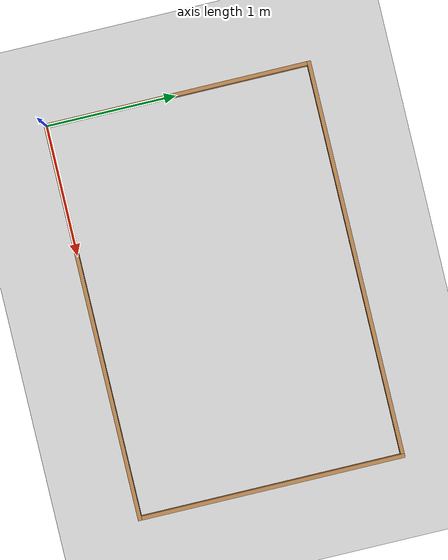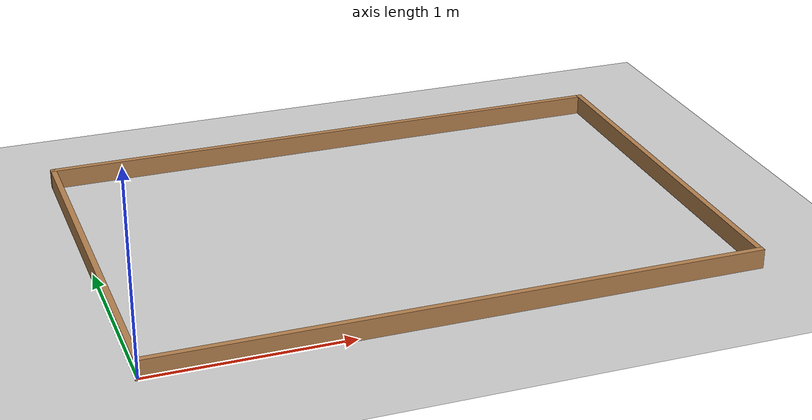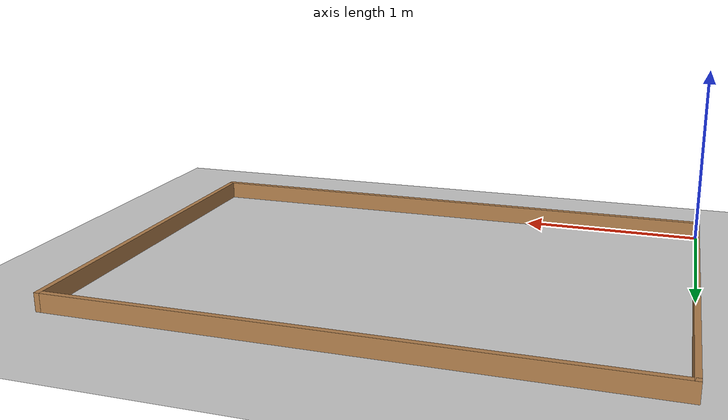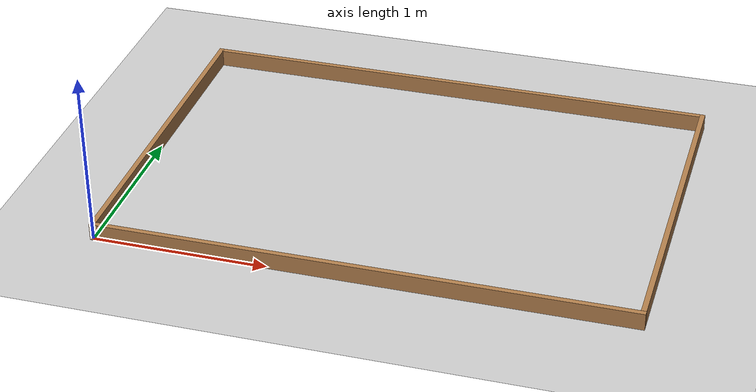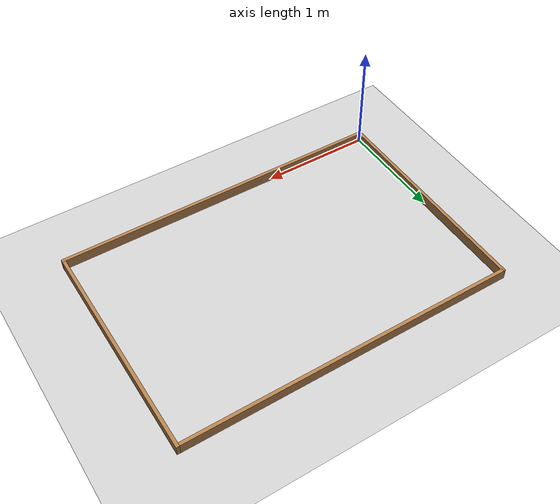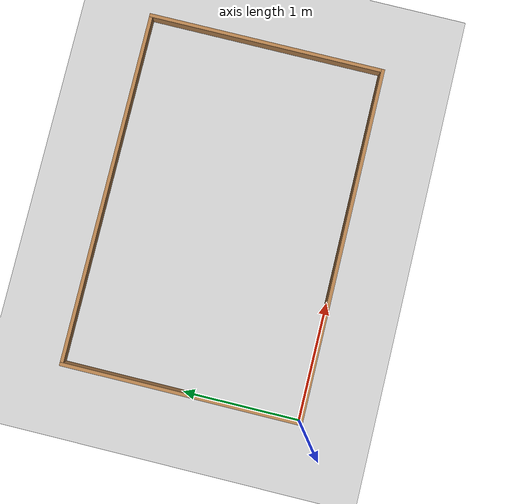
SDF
<sdf version="1.7">
 <world name="default">
  <light name="sun" type="directional">
   <pose>0 0 10 0 -0 0</pose>
   <diffuse>0.8 0.8 0.8 1</diffuse>
   <specular>0.2 0.2 0.2 1</specular>
   <attenuation>
    <range>1000</range>
    <constant>0.9</constant>
    <linear>0.01</linear>
    <quadratic>0.001</quadratic>
   </attenuation>
   <direction>-0.5 0.1 -0.9</direction>
   <spot><inner_angle>0</inner_angle><outer_angle>0</outer_angle><falloff>0</falloff></spot>
  </light>
  <model name="ground_plane">
   <static>1</static>
   <link name="link">
    <collision name="collision">
     <geometry><plane><normal>0 0 1</normal><size>100 100</size></plane></geometry>
     <surface>
      <contact><collide_bitmask>65535</collide_bitmask></contact>
      <friction><ode><mu>100</mu><mu2>50</mu2></ode></friction>
     </surface>
    </collision>
    <visual name="visual">
     <cast_shadows>0</cast_shadows>
     <geometry><plane><normal>0 0 1</normal><size>100 100</size></plane></geometry>
     <material>
      <script><uri>file://media/materials/scripts/gazebo.material</uri><name>Gazebo/Grey</name></script>
     </material>
    </visual>
   </link>
  </model>
  <gravity>0 0 -9.8</gravity>
  <magnetic_field>6e-06 2.3e-05 -4.2e-05</magnetic_field>
  <atmosphere type="adiabatic"/>
  <physics type="ode">
   <max_step_size>0.001</max_step_size>
   <real_time_factor>1</real_time_factor>
   <real_time_update_rate>1000</real_time_update_rate>
  </physics>
  <scene><ambient>0.4 0.4 0.4 1</ambient><background>0.7 0.7 0.7 1</background><shadows>1</shadows></scene>
  <audio><device>default</device></audio>
  <spherical_coordinates>
   <surface_model>EARTH_WGS84</surface_model>
   <latitude_deg>0</latitude_deg>
   <longitude_deg>0</longitude_deg>
   <elevation>0</elevation>
   <heading_deg>0</heading_deg>
  </spherical_coordinates>
  <model name="eurobot_walls">
   <pose>1.515 1.015 0 0 -0 0</pose>
   <link name="Wall_10">
    <collision name="Wall_10_Collision">
     <geometry><box><size>3.03 0.03 0.1</size></box></geometry>
     <pose>0 0 0.05 0 -0 0</pose>
    </collision>
    <visual name="Wall_10_Visual">
     <pose>0 0 0.05 0 -0 0</pose>
     <geometry><box><size>3.03 0.03 0.1</size></box></geometry>
     <material>
      <script><uri>file://media/materials/scripts/gazebo.material</uri><name>Gazebo/Wood</name></script>
      <ambient>1 0.764706 0.305882 1</ambient>
     </material>
     <meta><layer>0</layer></meta>
    </visual>
    <pose>-0.015 1.015 0 0 -0 0</pose>
   </link>
   <link name="Wall_12">
    <collision name="Wall_12_Collision">
     <geometry><box><size>2.03 0.03 0.1</size></box></geometry>
     <pose>0 0 0.05 0 -0 0</pose>
    </collision>
    <visual name="Wall_12_Visual">
     <pose>0 0 0.05 0 -0 0</pose>
     <geometry><box><size>2.03 0.03 0.1</size></box></geometry>
     <material>
      <script><uri>file://media/materials/scripts/gazebo.material</uri><name>Gazebo/Wood</name></script>
      <ambient>1 0.764706 0.305882 1</ambient>
     </material>
     <meta><layer>0</layer></meta>
    </visual>
    <pose>-1.515 0.015 0 0 -0 -1.5708</pose>
   </link>
   <link name="Wall_5">
    <collision name="Wall_5_Collision">
     <geometry><box><size>3.06 0.03 0.1</size></box></geometry>
     <pose>0 0 0.05 0 -0 0</pose>
    </collision>
    <visual name="Wall_5_Visual">
     <pose>0 0 0.05 0 -0 0</pose>
     <geometry><box><size>3.06 0.03 0.1</size></box></geometry>
     <material>
      <script><uri>file://media/materials/scripts/gazebo.material</uri><name>Gazebo/Wood</name></script>
      <ambient>1 0.764706 0.305882 1</ambient>
     </material>
     <meta><layer>0</layer></meta>
    </visual>
    <pose>0 -1.015 0 0 -0 0</pose>
   </link>
   <link name="Wall_8">
    <collision name="Wall_8_Collision">
     <geometry><box><size>2.03 0.03 0.1</size></box></geometry>
     <pose>0 0 0.05 0 -0 0</pose>
    </collision>
    <visual name="Wall_8_Visual">
     <pose>0 0 0.05 0 -0 0</pose>
     <geometry><box><size>2.03 0.03 0.1</size></box></geometry>
     <material>
      <script><uri>file://media/materials/scripts/gazebo.material</uri><name>Gazebo/Wood</name></script>
      <ambient>1 0.764706 0.305882 1</ambient>
     </material>
     <meta><layer>0</layer></meta>
    </visual>
    <pose>1.515 0.015 0 0 -0 1.5708</pose>
   </link>
   <static>1</static>
  </model>
 </world>
</sdf>
